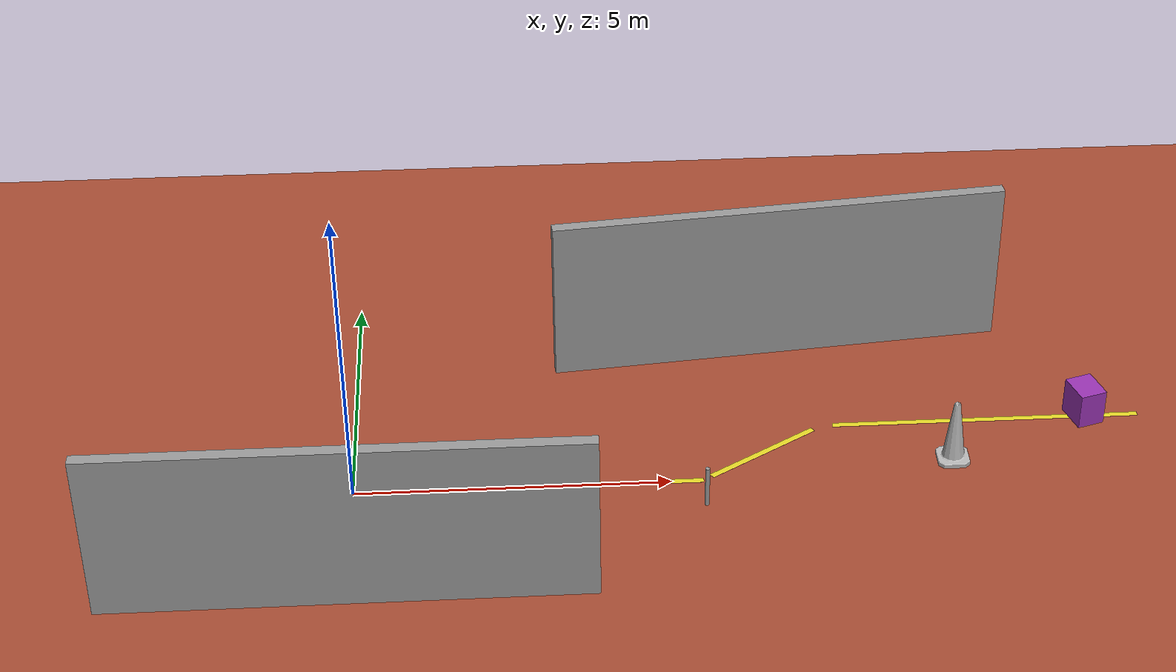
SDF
<sdf version="1.6">
 <world name="urban_clutter">
  <light type="directional" name="sun">
   <pose>0 0 10 0 0 0</pose>
   <diffuse>0.60 0.58 0.70 1</diffuse>
   <specular>0.10 0.10 0.12 1</specular>
   <attenuation>
    <range>1000</range>
    <constant>0.9</constant>
    <linear>0.01</linear>
    <quadratic>0.001</quadratic>
   </attenuation>
   <direction>0.2 -0.5 -0.8</direction>
  </light>
  <model name="ground_plane">
   <static>true</static>
   <link name="link">
    <collision name="collision">
     <geometry><plane><normal>0 0 1</normal><size>100 100</size></plane></geometry>
     <surface><friction><ode><mu>100</mu><mu2>50</mu2></ode></friction></surface>
    </collision>
    <visual name="visual">
     <cast_shadows>false</cast_shadows>
     <geometry><plane><normal>0 0 1</normal><size>100 100</size></plane></geometry>
     <material>
      <script><uri>file://media/materials/scripts/gazebo.material</uri><name>Gazebo/Bricks</name></script>
     </material>
    </visual>
   </link>
  </model>
  <model name="lane_segment_1">
   <static>true</static>
   <link name="link">
    <visual name="visual">
     <geometry><box><size>5.5 0.10 0.001</size></box></geometry>
     <material>
      <script><uri>file://media/materials/scripts/gazebo.material</uri><name>Gazebo/Yellow</name></script>
     </material>
    </visual>
   </link>
   <pose>2.75 0.0 0.0005 0 0 0</pose>
  </model>
  <model name="lane_segment_2">
   <static>true</static>
   <link name="link">
    <visual name="visual">
     <geometry><box><size>2.06 0.10 0.001</size></box></geometry>
     <material>
      <script><uri>file://media/materials/scripts/gazebo.material</uri><name>Gazebo/Yellow</name></script>
     </material>
    </visual>
   </link>
   <pose>6.5 0.65 0.0005 0 0 0.57</pose>
  </model>
  <model name="lane_segment_3">
   <static>true</static>
   <link name="link">
    <visual name="visual">
     <geometry><box><size>5.0 0.10 0.001</size></box></geometry>
     <material>
      <script><uri>file://media/materials/scripts/gazebo.material</uri><name>Gazebo/Yellow</name></script>
     </material>
    </visual>
   </link>
   <pose>10.2 1.3 0.0005 0 0 0</pose>
  </model>
  <model name="traffic_light_pole">
   <static>true</static>
   <link name="link">
    <collision name="collision">
     <geometry><cylinder><radius>0.035</radius><length>0.7</length></cylinder></geometry>
    </collision>
    <visual name="visual">
     <geometry><cylinder><radius>0.035</radius><length>0.7</length></cylinder></geometry>
     <material>
      <script><uri>file://media/materials/scripts/gazebo.material</uri><name>Gazebo/Grey</name></script>
     </material>
    </visual>
   </link>
   <pose>5.5 -0.6 0.35 0 0 0</pose>
  </model>
  <model name="obstacle_box">
   <static>true</static>
   <link name="link">
    <collision name="collision"><geometry><box><size>0.45 0.55 0.6</size></box></geometry></collision>
    <visual name="visual">
     <geometry><box><size>0.45 0.55 0.6</size></box></geometry>
     <material>
      <script><uri>file://media/materials/scripts/gazebo.material</uri><name>Gazebo/Purple</name></script>
     </material>
    </visual>
   </link>
   <pose>11.8 1.3 0.3 0 0 0.3</pose>
  </model>
  <include><uri>model://grey_wall</uri><name>wall_1</name><pose>0.0 -2.5 0 0 0 0</pose></include>
  <include><uri>model://grey_wall</uri><name>wall_2</name><pose>7.0 3.5 0 0 0 0.1</pose></include>
  <include><uri>model://construction_cone</uri><name>cone_1</name><pose>9.5 0.3 0 0 0 0</pose></include>
 </world>
</sdf>

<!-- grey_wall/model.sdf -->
<sdf version="1.5">
  <model name="grey_wall">
    <static>true</static>
    <link name="link">
      <pose>0 0 1.4 0 0 0</pose>
      <collision name="collision">
        <geometry>
          <box>
            <size>7.5 0.2 2.8</size>
          </box>
        </geometry>
      </collision>
      <visual name="visual">
        <cast_shadows>false</cast_shadows>
        <geometry>
          <box>
            <size>7.5 0.2 2.8</size>
          </box>
        </geometry>
        <material>
          <script>
            <uri>model://../model_source/models/grey_wall/materials/scripts</uri>
            <uri>model://../model_source/models/grey_wall/materials/textures</uri>
            <name>vrc/grey_wall</name>
          </script>
        </material>
      </visual>
    </link>
  </model>
</sdf>

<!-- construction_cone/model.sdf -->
<sdf version="1.5">
  <model name="Construction Cone">
    <link name="link">
      <collision name="collision">
        <geometry>
          <mesh>
            <scale>10 10 10</scale>
            <uri>file://isr-testbed/construction_cone/meshes/construction_cone.dae</uri>
          </mesh>
        </geometry>
      </collision>
      <visual name="visual">
        <geometry>
          <mesh>
            <scale>10 10 10</scale>
            <uri>file://isr-testbed/construction_cone/meshes/construction_cone.dae</uri>
          </mesh>
        </geometry>
      </visual>
    </link>
  </model>
</sdf>
